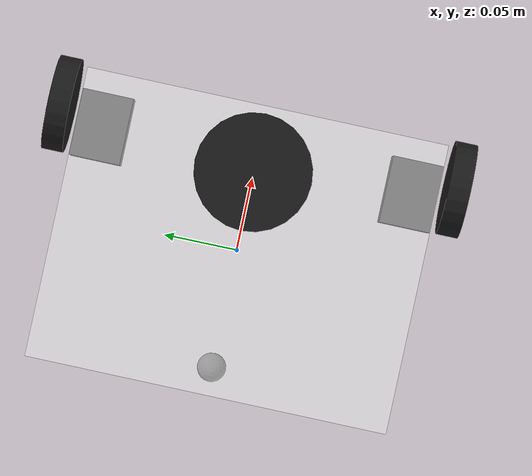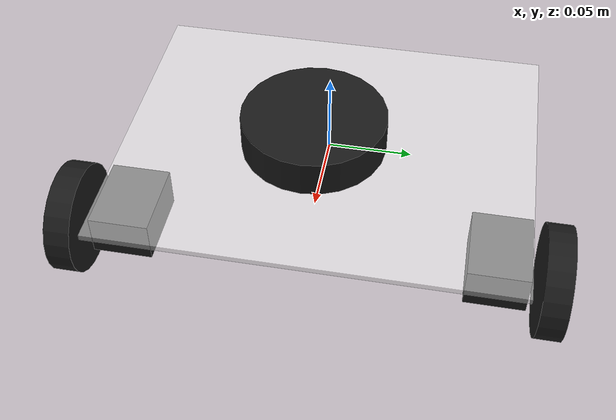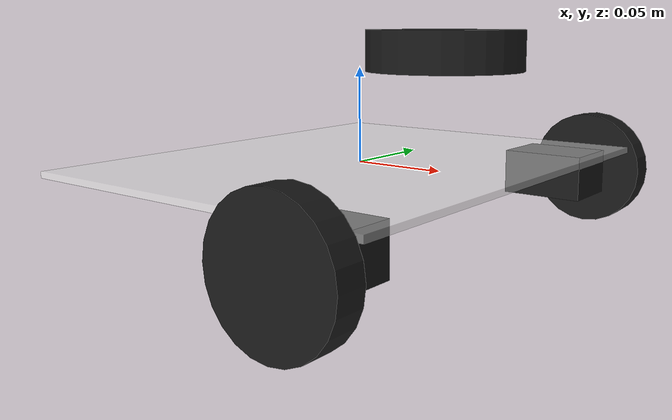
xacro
<?xml version='1.0'?>
<robot name="ktbot" xmlns:xacro="http://www.ros.org/wiki/xacro">
  <!-- Import all Gazebo-customization elements, including Gazebo colors -->
  <xacro:include filename="$(find ktbot_description)/urdf/ktbot.gazebo" />
  <!-- Import Rviz colors -->
  <xacro:include filename="$(find ktbot_description)/urdf/materials.xacro" />

  <xacro:property name="INF" value="1.0e+50"/>
  <xacro:property name="PI" value="3.1415926535897931"/>
  <xacro:property name="MAX_RPS" value="3.2724895833333334"/>

  <xacro:macro name="servo" params="suffix">
    <link name="servo_${suffix}">
      <inertial>
        <mass value="0.052"/>
        <inertia ixx="8.02e-06" ixy="0" ixz="0" iyy="1.188e-05" iyz="0" izz="1.448e-05"/>
      </inertial>
      <visual name='visual'>
        <geometry>
          <box size="0.046 0.035 0.025"/>
        </geometry>
        <material name="dgrey"/>
      </visual>
      <collision name='collision'>
        <geometry>
          <box size="0.046 0.035 0.025"/>
        </geometry>
      </collision>
    </link>
  </xacro:macro>
  <xacro:macro name="wheel" params="suffix reflect">
    <link name='wheel_${suffix}'>
      <inertial>
        <!-- actual mass is ~0.03 -->
        <mass value="0.30"/>
        <!-- We multiply the inertial values by 100x to prevent slippage/loss of precision by ODE. -->
        <inertia ixx="8.48e-04" ixy="0" ixz="0" iyy="8.48e-04" iyz="0" izz="1.584e-03"/>
      </inertial>
      <visual name='visual'>
        <geometry>
          <cylinder radius="0.0325" length="0.015"/>
        </geometry>
        <material name="dgrey"/>
      </visual>
      <collision name='collision'>
        <geometry>
          <cylinder radius="0.0325" length="0.015"/>
        </geometry>
      </collision>
    </link>
    <joint name='wheel_${suffix}_joint' type='continuous'>
      <origin xyz="0.0725 ${reflect*0.137537} -0.013883" rpy="${PI/2} ${PI/2} 0"/>
      <parent link="base_link"/>
      <child link="wheel_${suffix}"/>
      <limit effort="7" velocity="${MAX_RPS}"/>
      <axis xyz="0 0 -1"/>
      <dynamics damping="1.0" friction="0.00"/>
    </joint>
    <transmission name="wheel_${suffix}_trans">
      <type>transmission_interface/SimpleTransmission</type>
      <joint name="wheel_${suffix}_joint">
        <hardwareInterface>hardware_interface/VelocityJointInterface</hardwareInterface>
      </joint>
      <actuator name="wheel_${suffix}_motor">
        <mechanicalReduction>1</mechanicalReduction>
      </actuator>
    </transmission>
  </xacro:macro>

  <link name='base_link'>
    <inertial>
      <mass value="0.41"/>
      <inertia ixx="0.00076912" ixy="0" ixz="0" iyy="0.00062306" iyz="0" izz="0.00139144"/>
    </inertial>
    <visual name='visual'>
      <geometry>
        <box size="0.2 0.25 0.0033"/>
      </geometry>
      <material name="white"/>
      <transparency>0.5</transparency>
    </visual>
    <collision name='collision'>
      <geometry>
        <box size="0.2 0.25 0.0033"/>
      </geometry>
    </collision>

    <visual name='caster_visual'>
      <origin xyz="-0.0825 0.0 -0.038" rpy="0 0 0"/>
      <geometry>
        <sphere radius="0.01"/>
      </geometry>
      <material name="grey"/>
    </visual>

    <collision name='caster_collision'>
      <origin xyz="-0.0825 0.0 -0.038" rpy="0 0 0"/>
      <geometry>
        <sphere radius="0.01"/>
      </geometry>
    </collision>
  </link>

  <xacro:servo suffix='left'>
  </xacro:servo>
  <xacro:servo suffix='right'>
  </xacro:servo>
  <joint name='servo_l_fix' type='fixed'>
    <origin xyz="0.0625 -0.107537 -0.013883" rpy="0 -${PI} 0"/>
    <parent link="base_link"/>
    <child link="servo_left"/>
  </joint>
  <joint name='servo_r_fix' type='fixed'>
    <origin xyz="0.0625 0.107537 -0.013883" rpy="0 0 0"/>
    <parent link="base_link"/>
    <child link="servo_right"/>
  </joint>

  <xacro:wheel suffix='left' reflect="1"/>
  <xacro:wheel suffix='right' reflect="-1"/>

  <link name='back_stack'>
    <inertial>
      <mass value="0.01"/>
      <inertia ixx="2.3e-06" ixy="0" ixz="0" iyy="1.98e-06" iyz="0" izz="2.35e-06"/>
    </inertial>
    <visual name='visual'>
      <geometry>
        <box size="0.035 0.04 0.034"/>
      </geometry>
      <material name="white"/>
    </visual>
    <collision name='collision'>
      <geometry>
        <box size="0.035 0.04 0.034"/>
      </geometry>
    </collision>
  </link>
  <joint name='back_stack_f' type='fixed'>
    <origin xyz="-0.0825 0 -0.02" rpy="0 0 0"/>
    <parent link="base_link"/>
    <child link="back_stack"/>
  </joint>

  <link name='base_laser_link'>
    <inertial>
      <mass value="0.1"/>
      <inertia ixx="4.136e-05" ixy="0" ixz="0" iyy="4.136e-05" iyz="0" izz="7.605e-05"/>
    </inertial>
    <visual name='visual'>
      <geometry>
        <cylinder radius="0.039" length="0.02"/>
      </geometry>
      <material name="dgrey"/>
    </visual>
    <collision name='collision'>
      <geometry>
        <cylinder radius="0.039" length="0.02"/>
      </geometry>
    </collision>
  </link>
  <joint name='lidar_top' type='fixed'>
    <origin xyz="0.0525 0 0.06" rpy="0 0 0"/>
    <parent link="base_link"/>
    <child link="base_laser_link"/>
  </joint>
</robot>

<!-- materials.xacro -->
<robot>

  <material name="black">
    <color rgba="0.0 0.0 0.0 1.0"/>
  </material>

  <material name="blue">
    <color rgba="0.0 0.0 0.8 1.0"/>
  </material>

  <material name="green">
    <color rgba="0.0 0.8 0.0 1.0"/>
  </material>

  <material name="grey">
    <color rgba="0.3 0.3 0.3 1.0"/>
  </material>

  <material name="dgrey">
    <color rgba="0.1 0.1 0.1 1.0"/>
  </material>

  <material name="orange">
    <color rgba="${255/255} ${108/255} ${10/255} 1.0"/>
  </material>

  <material name="brown">
    <color rgba="${222/255} ${207/255} ${195/255} 1.0"/>
  </material>

  <material name="red">
    <color rgba="0.8 0.0 0.0 1.0"/>
  </material>

  <material name="white">
    <color rgba="1.0 1.0 1.0 0.5"/>
  </material>

</robot>
